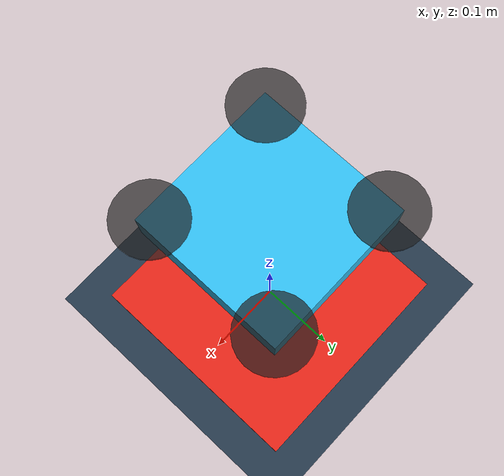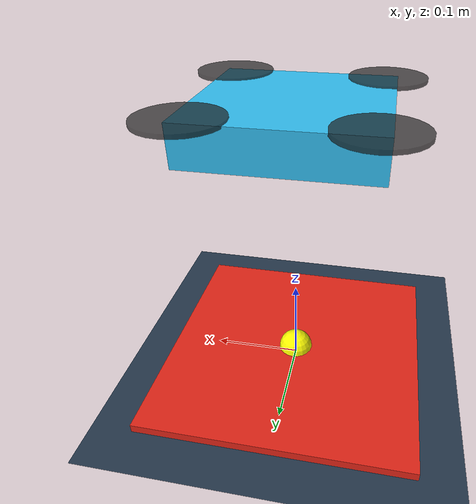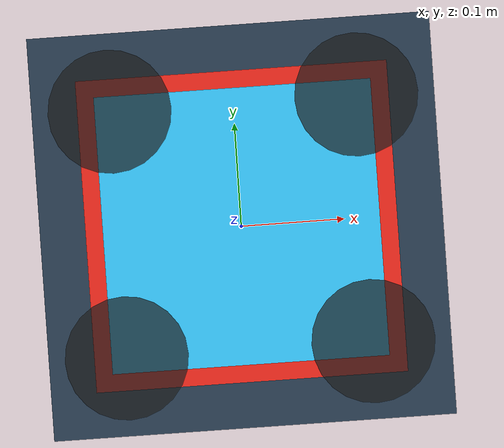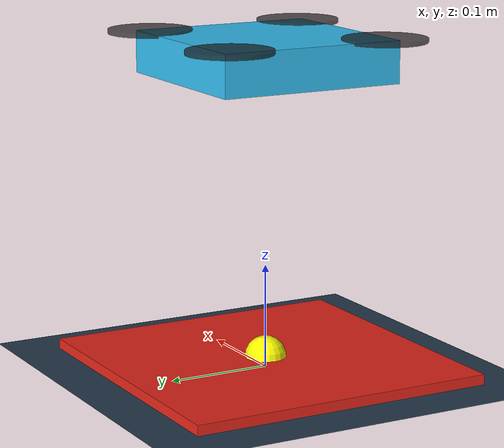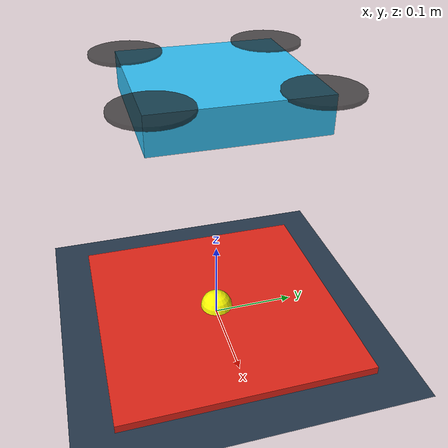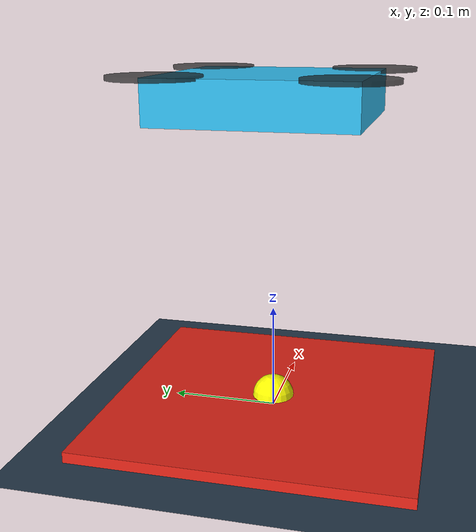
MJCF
<mujoco model="tello_pad_twin">
  <compiler angle="degree" coordinate="local"/>
  <option gravity="0 0 -9.81" timestep="0.01"/>
  <visual>
    <headlight diffuse="0.8 0.8 0.8"/>
    <rgba haze="0.15 0.25 0.35 1"/>
  </visual>
  <asset>
    <texture type="skybox" builtin="gradient" rgb1="0.3 0.5 0.7" rgb2="0 0 0" width="512" height="512"/>
    <texture name="grid" type="2d" builtin="checker" rgb1="0.2 0.3 0.4" rgb2="0.1 0.15 0.2" width="512" height="512"/>
    <material name="grid" texture="grid" texrepeat="8 8" reflectance="0.1"/>
    <material name="pad" rgba="0.9 0.15 0.1 1"/>
    <material name="drone" rgba="0.2 0.75 0.95 1"/>
    <material name="rotor" rgba="0.1 0.1 0.1 0.7"/>
  </asset>
  <worldbody>
    <light pos="0 0 3" dir="0 0 -1" diffuse="0.8 0.8 0.8"/>
    <geom name="floor" type="plane" size="2 2 0.05" material="grid"/>
    <!-- Mission Pad at origin (local frame of SDK x/y/z) -->
    <geom name="mission_pad" type="box" size="0.15 0.15 0.005" pos="0 0 0.005" material="pad"/>
    <site name="pad_origin" pos="0 0 0.01" size="0.02" rgba="1 1 0 1"/>
    <!-- Kinematic twin: pose set from SDK each frame -->
    <body name="drone" pos="0 0 0.3">
      <freejoint name="drone_free"/>
      <geom name="body" type="box" size="0.09 0.09 0.02" material="drone" mass="0.087"/>
      <geom name="arm_fl" type="capsule" fromto="0 0 0 0.08 0.08 0" size="0.008" material="drone"/>
      <geom name="arm_fr" type="capsule" fromto="0 0 0 0.08 -0.08 0" size="0.008" material="drone"/>
      <geom name="arm_rl" type="capsule" fromto="0 0 0 -0.08 0.08 0" size="0.008" material="drone"/>
      <geom name="arm_rr" type="capsule" fromto="0 0 0 -0.08 -0.08 0" size="0.008" material="drone"/>
      <geom name="rotor_fl" type="cylinder" size="0.04 0.002" pos="0.08 0.08 0.02" material="rotor"/>
      <geom name="rotor_fr" type="cylinder" size="0.04 0.002" pos="0.08 -0.08 0.02" material="rotor"/>
      <geom name="rotor_rl" type="cylinder" size="0.04 0.002" pos="-0.08 0.08 0.02" material="rotor"/>
      <geom name="rotor_rr" type="cylinder" size="0.04 0.002" pos="-0.08 -0.08 0.02" material="rotor"/>
      <camera name="track" pos="-0.6 0 0.4" xyaxes="0 -1 0 0.5 0 1" mode="trackcom"/>
    </body>
  </worldbody>
</mujoco>
